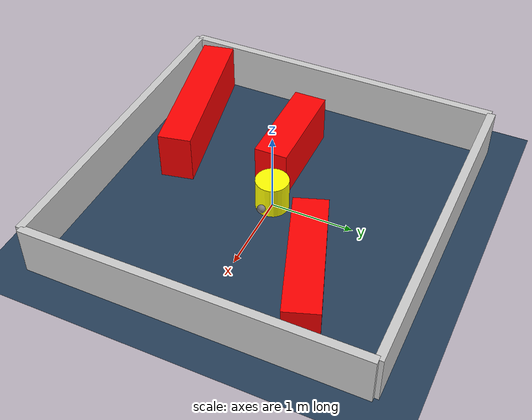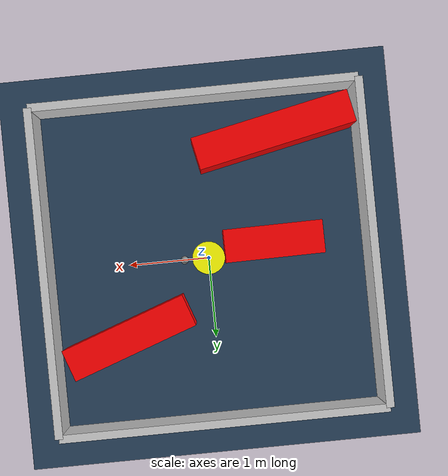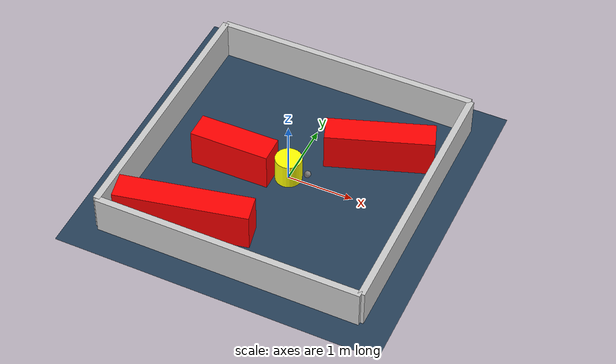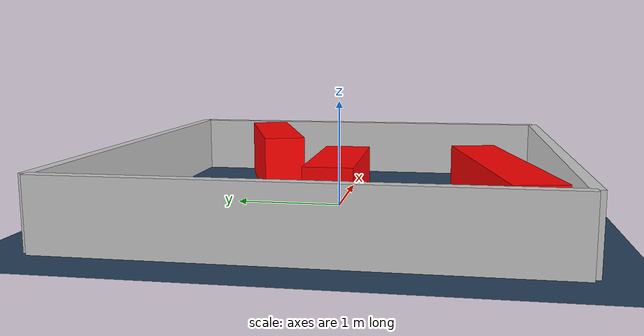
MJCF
<?xml version="1.0" ?>
<mujoco model="generated_environment">
  <option timestep="0.01" integrator="RK4" cone="elliptic"/>
  <default>
    <geom density="1"/>
  </default>
  <asset>
    <texture builtin="gradient" height="3072" rgb1="0.3 0.5 0.7" rgb2="0 0 0" type="skybox" width="512"/>
    <texture builtin="checker" height="300" mark="edge" markrgb="0.8 0.8 0.8" name="groundplane" rgb1="0.2 0.3 0.4" rgb2="0.1 0.2 0.3" type="2d" width="300"/>
    <material name="groundplane" reflectance="0.2" texrepeat="5 5" texture="groundplane" texuniform="true"/>
    <material name="robot" rgba="0.0 1.0 0.0 1"/>
  </asset>
  <worldbody>
    <light dir="0 0 -1" directional="true" pos="0 0 1.5"/>
    <geom condim="4" friction="1.0 0.005 0.001" material="groundplane" name="floor" size="0 0 0.05" type="plane"/>
    <body name="walls">
      <geom name="wall_1" condim="4" pos="-2.0 0.0 0.3" rgba="0.800000011920929 0.800000011920929 0.800000011920929 1.0" size="0.05 2.0 0.3" type="box"/>
      <geom name="wall_2" condim="4" pos="2.0 0.0 0.3" rgba="0.800000011920929 0.800000011920929 0.800000011920929 1.0" size="0.05 2.0 0.3" type="box"/>
      <geom name="wall_3" condim="4" pos="0.0 -2.0 0.3" rgba="0.800000011920929 0.800000011920929 0.800000011920929 1.0" size="2.0 0.05 0.3" type="box"/>
      <geom name="wall_4" condim="4" pos="0.0 2.0 0.3" rgba="0.800000011920929 0.800000011920929 0.800000011920929 1.0" size="2.0 0.05 0.3" type="box"/>
    </body>
    <body name="robot">
      <joint name="joint_x" type="slide" pos="0 0 0" axis="1 0 0"/>
      <joint name="joint_y" type="slide" pos="0 0 0" axis="0 1 0"/>
      <geom name="robot" type="sphere" pos="0.3 0.0 0.2" size="0.05" mass="5." friction="1.0 0.005 0.0001" condim="4" rgba="0.5 0.5 0.5 1.0"/>
      <site name="sensor_ball"/>
    </body>
    <body name="obstacle_movable_1">
      <geom name="obstacle_movable_1" condim="4" pos="0.0 0.0 0.2" euler="0 0 0.0" friction="1.0 0.005 0.001" rgba="1.0 1.0 0.0 1.0" size="0.2 0.2 0.0" type="cylinder" mass="0.1"/>
      <joint type="free"/>
    </body>
    <body name="obstacle_2_static">
      <geom name="obstacle_2_static" condim="4" pos="1.04779164669469 0.869530672351231 0.3" euler="0 0 199.60873087839357" friction="1.0 0.005 0.001" rgba="1 0 0 1" size="0.7984168690713219 0.2 0.3" type="box"/>
    </body>
    <body name="obstacle_3_static">
      <geom name="obstacle_3_static" condim="4" pos="-0.923844951955016 -1.4578965253905478 0.3" euler="0 0 191.90115679211047" friction="1.0 0.005 0.001" rgba="1 0 0 1" size="0.9823747744697735 0.2 0.3" type="box"/>
    </body>
    <body name="obstacle_4_static">
      <geom name="obstacle_4_static" condim="4" pos="-0.8025070546539201 -0.12350785955658439 0.3" euler="0 0 0.5903990431598238" friction="1.0 0.005 0.001" rgba="1 0 0 1" size="0.6006234395423593 0.2 0.3" type="box"/>
    </body>
  </worldbody>
  <actuator>
    <motor name="actuator_x" joint="joint_x" gear="1" ctrlrange="-1 1"/>
    <motor name="actuator_y" joint="joint_y" gear="1" ctrlrange="-1 1"/>
  </actuator>
</mujoco>
